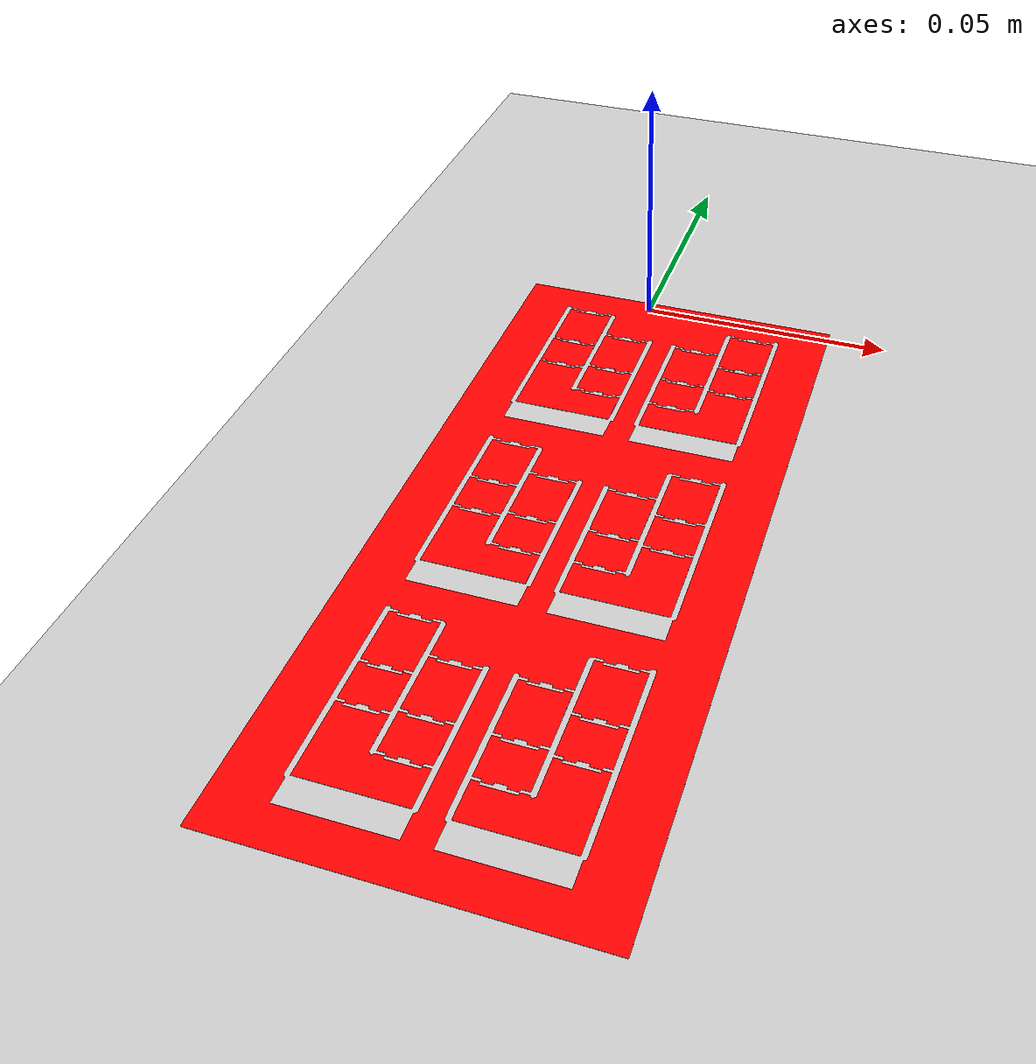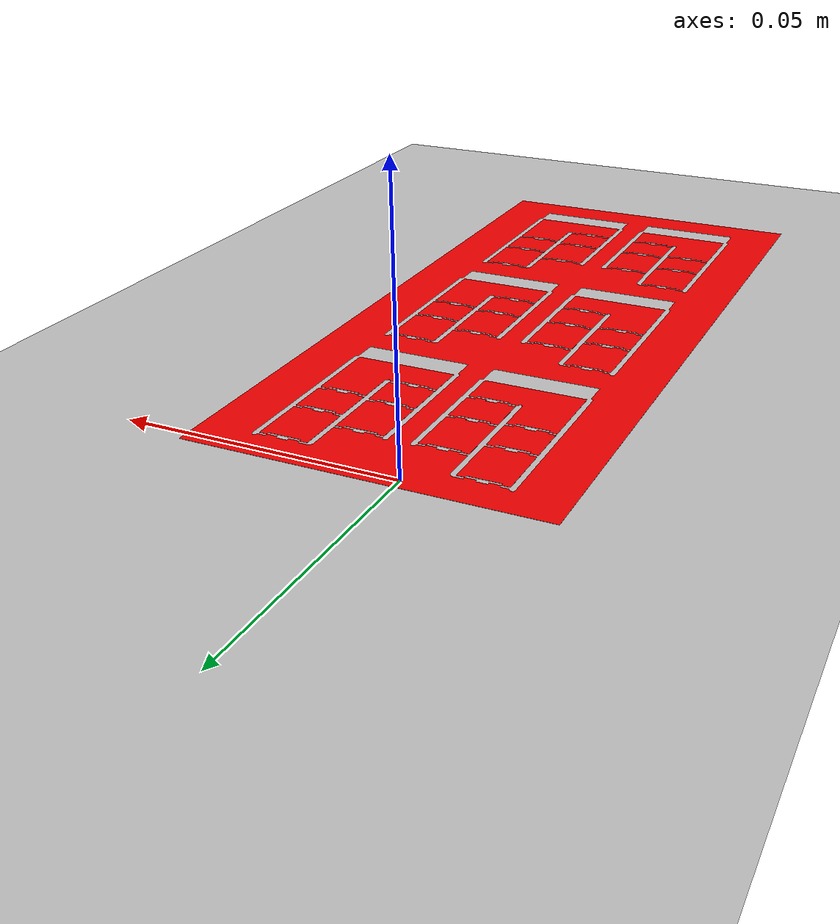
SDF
<sdf version="1.5">
  <world name="world">
    <model name="default_body">
      <static>false</static>
      <pose>0 0 0 0 0 0</pose>
      <plugin filename="libmodel_vel.so" name="Model_Vel"/>
      <link name="*">
        <gravity>true</gravity>
        <self_collide>False</self_collide>
        <visual name="basic_bot_visual0">
          <pose>0 0 0 0 0 0</pose>
          <geometry>
            <mesh>
              <uri>file:///home/skylion/popupCAD_files/export/140065903661264.dae</uri>
            </mesh>
          </geometry>
        </visual>
        <collision name="collision:140065903661264">
          <pose>0.00597611751 -0.0676266271431 6.25161244788e-05 0 0 0</pose>
          <geometry>
            <box>
              <size>0.0650002 0.1420002 0.0001</size>
            </box>
          </geometry>
          <surface>
            <bounce>
              <restitution_coefficient>0</restitution_coefficient>
            </bounce>
          </surface>
        </collision>
        <inertial>
          <mass>6.0595835349e-07</mass>
          <pose>0.00597611751 -0.0676266271431 6.25161244788e-05 0 0 0</pose>
          <inertia>
            <ixx>1.13880484572e-09</ixx>
            <ixy>2.91163048876e-25</ixy>
            <ixz>1.32008241998e-28</ixz>
            <iyy>2.93558777108e-10</iyy>
            <iyz>-1.37965658533e-16</iyz>
            <izz>1.43236204607e-09</izz>
          </inertia>
        </inertial>
      </link>
      <link name="*D0A0A0">
        <gravity>true</gravity>
        <self_collide>False</self_collide>
        <visual name="basic_bot_visual1">
          <pose>0 0 0 0 0 0</pose>
          <geometry>
            <mesh>
              <uri>file:///home/skylion/popupCAD_files/export/140065900404880.dae</uri>
            </mesh>
          </geometry>
        </visual>
        <collision name="collision:140065900404880">
          <pose>-0.00817524884737 -0.122103766714 6.24317069162e-05 0 0 0</pose>
          <geometry>
            <box>
              <size>0.019 0.013995 0.0001</size>
            </box>
          </geometry>
          <surface>
            <bounce>
              <restitution_coefficient>0</restitution_coefficient>
            </bounce>
          </surface>
        </collision>
        <inertial>
          <mass>2.38451735347e-08</mass>
          <pose>-0.00817524884737 -0.122103766714 6.24317069162e-05 0 0 0</pose>
          <inertia>
            <ixx>3.41459172524e-13</ixx>
            <ixy>1.8088601127e-13</ixy>
            <ixz>2.60989959731e-18</ixz>
            <iyy>6.6652719573e-13</iyy>
            <iyz>8.36861133808e-18</iyz>
            <izz>1.0079244814e-12</izz>
          </inertia>
        </inertial>
      </link>
      <link name="*E0A0A0">
        <gravity>true</gravity>
        <self_collide>False</self_collide>
        <visual name="basic_bot_visual2">
          <pose>0 0 0 0 0 0</pose>
          <geometry>
            <mesh>
              <uri>file:///home/skylion/popupCAD_files/export/140065900330512.dae</uri>
            </mesh>
          </geometry>
        </visual>
        <collision name="collision:140065900330512">
          <pose>-0.00817524884737 -0.0771037667138 6.24317069162e-05 0 0 0</pose>
          <geometry>
            <box>
              <size>0.019 0.013995 0.0001</size>
            </box>
          </geometry>
          <surface>
            <bounce>
              <restitution_coefficient>0</restitution_coefficient>
            </bounce>
          </surface>
        </collision>
        <inertial>
          <mass>2.38451735347e-08</mass>
          <pose>-0.00817524884737 -0.0771037667138 6.24317069162e-05 0 0 0</pose>
          <inertia>
            <ixx>3.41459172524e-13</ixx>
            <ixy>1.8088601127e-13</ixy>
            <ixz>2.60989959732e-18</ixz>
            <iyy>6.6652719573e-13</iyy>
            <iyz>8.36861133811e-18</iyz>
            <izz>1.0079244814e-12</izz>
          </inertia>
        </inertial>
      </link>
      <link name="*A0A0">
        <gravity>true</gravity>
        <self_collide>False</self_collide>
        <visual name="basic_bot_visual3">
          <pose>0 0 0 0 0 0</pose>
          <geometry>
            <mesh>
              <uri>file:///home/skylion/popupCAD_files/export/140065900440528.dae</uri>
            </mesh>
          </geometry>
        </visual>
        <collision name="collision:140065900440528">
          <pose>-0.01152388249 -0.10973558386 6.25e-05 0 0 0</pose>
          <geometry>
            <box>
              <size>0.009 0.00799 0.0001</size>
            </box>
          </geometry>
          <surface>
            <bounce>
              <restitution_coefficient>0</restitution_coefficient>
            </bounce>
          </surface>
        </collision>
        <inertial>
          <mass>8.38280464243e-09</mass>
          <pose>-0.01152388249 -0.10973558386 6.25e-05 0 0 0</pose>
          <inertia>
            <ixx>3.93102818947e-14</ixx>
            <ixy>-9.36753836022e-28</ixy>
            <ixz>7.81843297986e-31</ixz>
            <iyy>5.75484237895e-14</iyy>
            <iyz>6.99384902395e-18</iyz>
            <izz>9.6837081221e-14</izz>
          </inertia>
        </inertial>
      </link>
      <link name="*A0">
        <gravity>true</gravity>
        <self_collide>False</self_collide>
        <visual name="basic_bot_visual4">
          <pose>0 0 0 0 0 0</pose>
          <geometry>
            <mesh>
              <uri>file:///home/skylion/popupCAD_files/export/140065900523472.dae</uri>
            </mesh>
          </geometry>
        </visual>
        <collision name="collision:140065900523472">
          <pose>-0.01152388249 -0.10023558386 6.25e-05 0 0 0</pose>
          <geometry>
            <box>
              <size>0.009 0.01099 0.0001</size>
            </box>
          </geometry>
          <surface>
            <bounce>
              <restitution_coefficient>0</restitution_coefficient>
            </bounce>
          </surface>
        </collision>
        <inertial>
          <mass>1.17578046424e-08</mass>
          <pose>-0.01152388249 -0.10023558386 6.25e-05 0 0 0</pose>
          <inertia>
            <ixx>1.07760706736e-13</ixx>
            <ixy>-2.77124370814e-28</ixy>
            <ixz>6.70955474026e-30</ixz>
            <iyy>8.03340683208e-14</iyy>
            <iyz>9.79512542015e-18</iyz>
            <izz>1.88064361531e-13</izz>
          </inertia>
        </inertial>
      </link>
      <link name="*B0A0">
        <gravity>true</gravity>
        <self_collide>False</self_collide>
        <visual name="basic_bot_visual5">
          <pose>0 0 0 0 0 0</pose>
          <geometry>
            <mesh>
              <uri>file:///home/skylion/popupCAD_files/export/140065901233168.dae</uri>
            </mesh>
          </geometry>
        </visual>
        <collision name="collision:140065901233168">
          <pose>-0.01152388249 -0.06473558386 6.25e-05 0 0 0</pose>
          <geometry>
            <box>
              <size>0.009 0.00799 0.0001</size>
            </box>
          </geometry>
          <surface>
            <bounce>
              <restitution_coefficient>0</restitution_coefficient>
            </bounce>
          </surface>
        </collision>
        <inertial>
          <mass>8.38280464243e-09</mass>
          <pose>-0.01152388249 -0.06473558386 6.25e-05 0 0 0</pose>
          <inertia>
            <ixx>3.93102818947e-14</ixx>
            <ixy>-5.40721009698e-28</ixy>
            <ixz>3.01265998963e-30</ixz>
            <iyy>5.75484237895e-14</iyy>
            <iyz>6.99384902394e-18</iyz>
            <izz>9.6837081221e-14</izz>
          </inertia>
        </inertial>
      </link>
      <link name="*B0">
        <gravity>true</gravity>
        <self_collide>False</self_collide>
        <visual name="basic_bot_visual6">
          <pose>0 0 0 0 0 0</pose>
          <geometry>
            <mesh>
              <uri>file:///home/skylion/popupCAD_files/export/140065901135888.dae</uri>
            </mesh>
          </geometry>
        </visual>
        <collision name="collision:140065901135888">
          <pose>-0.01152388249 -0.05523558386 6.25e-05 0 0 0</pose>
          <geometry>
            <box>
              <size>0.009 0.01099 0.0001</size>
            </box>
          </geometry>
          <surface>
            <bounce>
              <restitution_coefficient>0</restitution_coefficient>
            </bounce>
          </surface>
        </collision>
        <inertial>
          <mass>1.17578046424e-08</mass>
          <pose>-0.01152388249 -0.05523558386 6.25e-05 0 0 0</pose>
          <inertia>
            <ixx>1.07760706736e-13</ixx>
            <ixy>2.0377263258e-28</ixy>
            <ixz>7.70617533823e-30</ixz>
            <iyy>8.03340683208e-14</iyy>
            <iyz>9.79512542017e-18</iyz>
            <izz>1.88064361531e-13</izz>
          </inertia>
        </inertial>
      </link>
      <link name="*F0A0A0">
        <gravity>true</gravity>
        <self_collide>False</self_collide>
        <visual name="basic_bot_visual7">
          <pose>0 0 0 0 0 0</pose>
          <geometry>
            <mesh>
              <uri>file:///home/skylion/popupCAD_files/export/140065901108240.dae</uri>
            </mesh>
          </geometry>
        </visual>
        <collision name="collision:140065901108240">
          <pose>-0.00817524884737 -0.0321037667138 6.24317069162e-05 0 0 0</pose>
          <geometry>
            <box>
              <size>0.019 0.013995 0.0001</size>
            </box>
          </geometry>
          <surface>
            <bounce>
              <restitution_coefficient>0</restitution_coefficient>
            </bounce>
          </surface>
        </collision>
        <inertial>
          <mass>2.38451735347e-08</mass>
          <pose>-0.00817524884737 -0.0321037667138 6.24317069162e-05 0 0 0</pose>
          <inertia>
            <ixx>3.41459172524e-13</ixx>
            <ixy>1.8088601127e-13</ixy>
            <ixz>2.60989959732e-18</ixz>
            <iyy>6.6652719573e-13</iyy>
            <iyz>8.36861133811e-18</iyz>
            <izz>1.0079244814e-12</izz>
          </inertia>
        </inertial>
      </link>
      <link name="*C0A0">
        <gravity>true</gravity>
        <self_collide>False</self_collide>
        <visual name="basic_bot_visual8">
          <pose>0 0 0 0 0 0</pose>
          <geometry>
            <mesh>
              <uri>file:///home/skylion/popupCAD_files/export/140065903015760.dae</uri>
            </mesh>
          </geometry>
        </visual>
        <collision name="collision:140065903015760">
          <pose>-0.01152388249 -0.01973558386 6.25e-05 0 0 0</pose>
          <geometry>
            <box>
              <size>0.009 0.00799 0.0001</size>
            </box>
          </geometry>
          <surface>
            <bounce>
              <restitution_coefficient>0</restitution_coefficient>
            </bounce>
          </surface>
        </collision>
        <inertial>
          <mass>8.38280464243e-09</mass>
          <pose>-0.01152388249 -0.01973558386 6.25e-05 0 0 0</pose>
          <inertia>
            <ixx>3.93102818947e-14</ixx>
            <ixy>8.12280213345e-29</ixy>
            <ixz>-2.16185636257e-31</ixz>
            <iyy>5.75484237895e-14</iyy>
            <iyz>6.99384902394e-18</iyz>
            <izz>9.6837081221e-14</izz>
          </inertia>
        </inertial>
      </link>
      <link name="*C0">
        <gravity>true</gravity>
        <self_collide>False</self_collide>
        <visual name="basic_bot_visual9">
          <pose>0 0 0 0 0 0</pose>
          <geometry>
            <mesh>
              <uri>file:///home/skylion/popupCAD_files/export/140065903074128.dae</uri>
            </mesh>
          </geometry>
        </visual>
        <collision name="collision:140065903074128">
          <pose>-0.01152388249 -0.01023558386 6.25e-05 0 0 0</pose>
          <geometry>
            <box>
              <size>0.009 0.01099 0.0001</size>
            </box>
          </geometry>
          <surface>
            <bounce>
              <restitution_coefficient>0</restitution_coefficient>
            </bounce>
          </surface>
        </collision>
        <inertial>
          <mass>1.17578046424e-08</mass>
          <pose>-0.01152388249 -0.01023558386 6.25e-05 0 0 0</pose>
          <inertia>
            <ixx>1.07760706736e-13</ixx>
            <ixy>1.52003635675e-28</ixy>
            <ixz>-5.86277149196e-31</ixz>
            <iyy>8.03340683208e-14</iyy>
            <iyz>9.79512542017e-18</iyz>
            <izz>1.88064361531e-13</izz>
          </inertia>
        </inertial>
      </link>
      <link name="*D0A0">
        <gravity>true</gravity>
        <self_collide>False</self_collide>
        <visual name="basic_bot_visual10">
          <pose>0 0 0 0 0 0</pose>
          <geometry>
            <mesh>
              <uri>file:///home/skylion/popupCAD_files/export/140065902411600.dae</uri>
            </mesh>
          </geometry>
        </visual>
        <collision name="collision:140065902411600">
          <pose>-0.00152388249 -0.11673558386 6.25e-05 0 0 0</pose>
          <geometry>
            <box>
              <size>0.009 0.00799 0.0001</size>
            </box>
          </geometry>
          <surface>
            <bounce>
              <restitution_coefficient>0</restitution_coefficient>
            </bounce>
          </surface>
        </collision>
        <inertial>
          <mass>8.38280464243e-09</mass>
          <pose>-0.00152388249 -0.11673558386 6.25e-05 0 0 0</pose>
          <inertia>
            <ixx>3.93102818947e-14</ixx>
            <ixy>2.43228003793e-28</ixy>
            <ixz>-1.21162660214e-30</ixz>
            <iyy>5.75484237895e-14</iyy>
            <iyz>6.99384902394e-18</iyz>
            <izz>9.6837081221e-14</izz>
          </inertia>
        </inertial>
      </link>
      <link name="*D0">
        <gravity>true</gravity>
        <self_collide>False</self_collide>
        <visual name="basic_bot_visual11">
          <pose>0 0 0 0 0 0</pose>
          <geometry>
            <mesh>
              <uri>file:///home/skylion/popupCAD_files/export/140065902580624.dae</uri>
            </mesh>
          </geometry>
        </visual>
        <collision name="collision:140065902580624">
          <pose>-0.00152388249 -0.10723558386 6.25e-05 0 0 0</pose>
          <geometry>
            <box>
              <size>0.009 0.01099 0.0001</size>
            </box>
          </geometry>
          <surface>
            <bounce>
              <restitution_coefficient>0</restitution_coefficient>
            </bounce>
          </surface>
        </collision>
        <inertial>
          <mass>1.17578046424e-08</mass>
          <pose>-0.00152388249 -0.10723558386 6.25e-05 0 0 0</pose>
          <inertia>
            <ixx>1.07760706736e-13</ixx>
            <ixy>-1.63244903574e-28</ixy>
            <ixz>-3.21258355492e-30</ixz>
            <iyy>8.03340683208e-14</iyy>
            <iyz>9.79512542017e-18</iyz>
            <izz>1.88064361531e-13</izz>
          </inertia>
        </inertial>
      </link>
      <link name="*E0A0">
        <gravity>true</gravity>
        <self_collide>False</self_collide>
        <visual name="basic_bot_visual12">
          <pose>0 0 0 0 0 0</pose>
          <geometry>
            <mesh>
              <uri>file:///home/skylion/popupCAD_files/export/140065902499728.dae</uri>
            </mesh>
          </geometry>
        </visual>
        <collision name="collision:140065902499728">
          <pose>-0.00152388249 -0.07173558386 6.25e-05 0 0 0</pose>
          <geometry>
            <box>
              <size>0.009 0.00799 0.0001</size>
            </box>
          </geometry>
          <surface>
            <bounce>
              <restitution_coefficient>0</restitution_coefficient>
            </bounce>
          </surface>
        </collision>
        <inertial>
          <mass>8.38280464243e-09</mass>
          <pose>-0.00152388249 -0.07173558386 6.25e-05 0 0 0</pose>
          <inertia>
            <ixx>3.93102818947e-14</ixx>
            <ixy>-1.37187841799e-29</ixy>
            <ixz>-5.64947475062e-31</ixz>
            <iyy>5.75484237895e-14</iyy>
            <iyz>6.99384902394e-18</iyz>
            <izz>9.6837081221e-14</izz>
          </inertia>
        </inertial>
      </link>
      <link name="*E0">
        <gravity>true</gravity>
        <self_collide>False</self_collide>
        <visual name="basic_bot_visual13">
          <pose>0 0 0 0 0 0</pose>
          <geometry>
            <mesh>
              <uri>file:///home/skylion/popupCAD_files/export/140065904761744.dae</uri>
            </mesh>
          </geometry>
        </visual>
        <collision name="collision:140065904761744">
          <pose>-0.00152388249 -0.06223558386 6.25e-05 0 0 0</pose>
          <geometry>
            <box>
              <size>0.009 0.01099 0.0001</size>
            </box>
          </geometry>
          <surface>
            <bounce>
              <restitution_coefficient>0</restitution_coefficient>
            </bounce>
          </surface>
        </collision>
        <inertial>
          <mass>1.17578046424e-08</mass>
          <pose>-0.00152388249 -0.06223558386 6.25e-05 0 0 0</pose>
          <inertia>
            <ixx>1.07760706736e-13</ixx>
            <ixy>-1.04400810425e-29</ixy>
            <ixz>1.26918783335e-31</ixz>
            <iyy>8.03340683208e-14</iyy>
            <iyz>9.79512542017e-18</iyz>
            <izz>1.88064361531e-13</izz>
          </inertia>
        </inertial>
      </link>
      <link name="*F0A0">
        <gravity>true</gravity>
        <self_collide>False</self_collide>
        <visual name="basic_bot_visual14">
          <pose>0 0 0 0 0 0</pose>
          <geometry>
            <mesh>
              <uri>file:///home/skylion/popupCAD_files/export/140065904914320.dae</uri>
            </mesh>
          </geometry>
        </visual>
        <collision name="collision:140065904914320">
          <pose>-0.00152388249 -0.02673558386 6.25e-05 0 0 0</pose>
          <geometry>
            <box>
              <size>0.009 0.00799 0.0001</size>
            </box>
          </geometry>
          <surface>
            <bounce>
              <restitution_coefficient>0</restitution_coefficient>
            </bounce>
          </surface>
        </collision>
        <inertial>
          <mass>8.38280464243e-09</mass>
          <pose>-0.00152388249 -0.02673558386 6.25e-05 0 0 0</pose>
          <inertia>
            <ixx>3.93102818947e-14</ixx>
            <ixy>3.06669676905e-29</ixy>
            <ixz>2.34457896605e-31</ixz>
            <iyy>5.75484237895e-14</iyy>
            <iyz>6.99384902394e-18</iyz>
            <izz>9.6837081221e-14</izz>
          </inertia>
        </inertial>
      </link>
      <link name="*F0">
        <gravity>true</gravity>
        <self_collide>False</self_collide>
        <visual name="basic_bot_visual15">
          <pose>0 0 0 0 0 0</pose>
          <geometry>
            <mesh>
              <uri>file:///home/skylion/popupCAD_files/export/140065904960464.dae</uri>
            </mesh>
          </geometry>
        </visual>
        <collision name="collision:140065904960464">
          <pose>-0.00152388249 -0.01723558386 6.25e-05 0 0 0</pose>
          <geometry>
            <box>
              <size>0.009 0.01099 0.0001</size>
            </box>
          </geometry>
          <surface>
            <bounce>
              <restitution_coefficient>0</restitution_coefficient>
            </bounce>
          </surface>
        </collision>
        <inertial>
          <mass>1.17578046424e-08</mass>
          <pose>-0.00152388249 -0.01723558386 6.25e-05 0 0 0</pose>
          <inertia>
            <ixx>1.07760706736e-13</ixx>
            <ixy>2.09294658916e-29</ixy>
            <ixz>5.55594677769e-31</ixz>
            <iyy>8.03340683208e-14</iyy>
            <iyz>9.79512542017e-18</iyz>
            <izz>1.88064361531e-13</izz>
          </inertia>
        </inertial>
      </link>
      <link name="*J0A0A0">
        <gravity>true</gravity>
        <self_collide>False</self_collide>
        <visual name="basic_bot_visual16">
          <pose>0 0 0 0 0 0</pose>
          <geometry>
            <mesh>
              <uri>file:///home/skylion/popupCAD_files/export/140065903507408.dae</uri>
            </mesh>
          </geometry>
        </visual>
        <collision name="collision:140065903507408">
          <pose>0.0201274838674 -0.122103766714 6.24317069162e-05 0 0 0</pose>
          <geometry>
            <box>
              <size>0.019 0.013995 0.0001</size>
            </box>
          </geometry>
          <surface>
            <bounce>
              <restitution_coefficient>0</restitution_coefficient>
            </bounce>
          </surface>
        </collision>
        <inertial>
          <mass>2.38451735347e-08</mass>
          <pose>0.0201274838674 -0.122103766714 6.24317069162e-05 0 0 0</pose>
          <inertia>
            <ixx>3.41459172524e-13</ixx>
            <ixy>-1.8088601127e-13</ixy>
            <ixz>-2.60989959732e-18</ixz>
            <iyy>6.6652719573e-13</iyy>
            <iyz>8.3686113381e-18</iyz>
            <izz>1.0079244814e-12</izz>
          </inertia>
        </inertial>
      </link>
      <link name="*G0A0">
        <gravity>true</gravity>
        <self_collide>False</self_collide>
        <visual name="basic_bot_visual17">
          <pose>0 0 0 0 0 0</pose>
          <geometry>
            <mesh>
              <uri>file:///home/skylion/popupCAD_files/export/140065903637584.dae</uri>
            </mesh>
          </geometry>
        </visual>
        <collision name="collision:140065903637584">
          <pose>0.01347611751 -0.11673558386 6.25e-05 0 0 0</pose>
          <geometry>
            <box>
              <size>0.009 0.00799 0.0001</size>
            </box>
          </geometry>
          <surface>
            <bounce>
              <restitution_coefficient>0</restitution_coefficient>
            </bounce>
          </surface>
        </collision>
        <inertial>
          <mass>8.38280464243e-09</mass>
          <pose>0.01347611751 -0.11673558386 6.25e-05 0 0 0</pose>
          <inertia>
            <ixx>3.93102818947e-14</ixx>
            <ixy>-2.07040858658e-27</ixy>
            <ixz>9.11144215921e-30</ixz>
            <iyy>5.75484237895e-14</iyy>
            <iyz>6.99384902396e-18</iyz>
            <izz>9.6837081221e-14</izz>
          </inertia>
        </inertial>
      </link>
      <link name="*G0">
        <gravity>true</gravity>
        <self_collide>False</self_collide>
        <visual name="basic_bot_visual18">
          <pose>0 0 0 0 0 0</pose>
          <geometry>
            <mesh>
              <uri>file:///home/skylion/popupCAD_files/export/140065619482704.dae</uri>
            </mesh>
          </geometry>
        </visual>
        <collision name="collision:140065619482704">
          <pose>0.01347611751 -0.10723558386 6.25e-05 0 0 0</pose>
          <geometry>
            <box>
              <size>0.009 0.01099 0.0001</size>
            </box>
          </geometry>
          <surface>
            <bounce>
              <restitution_coefficient>0</restitution_coefficient>
            </bounce>
          </surface>
        </collision>
        <inertial>
          <mass>1.17578046424e-08</mass>
          <pose>0.01347611751 -0.10723558386 6.25e-05 0 0 0</pose>
          <inertia>
            <ixx>1.07760706736e-13</ixx>
            <ixy>6.50391164451e-28</ixy>
            <ixz>-2.40388557127e-30</ixz>
            <iyy>8.03340683208e-14</iyy>
            <iyz>9.79512542016e-18</iyz>
            <izz>1.88064361531e-13</izz>
          </inertia>
        </inertial>
      </link>
      <link name="*K0A0A0">
        <gravity>true</gravity>
        <self_collide>False</self_collide>
        <visual name="basic_bot_visual19">
          <pose>0 0 0 0 0 0</pose>
          <geometry>
            <mesh>
              <uri>file:///home/skylion/popupCAD_files/export/140065619496016.dae</uri>
            </mesh>
          </geometry>
        </visual>
        <collision name="collision:140065619496016">
          <pose>0.0201274838674 -0.0771037667138 6.24317069162e-05 0 0 0</pose>
          <geometry>
            <box>
              <size>0.019 0.013995 0.0001</size>
            </box>
          </geometry>
          <surface>
            <bounce>
              <restitution_coefficient>0</restitution_coefficient>
            </bounce>
          </surface>
        </collision>
        <inertial>
          <mass>2.38451735347e-08</mass>
          <pose>0.0201274838674 -0.0771037667138 6.24317069162e-05 0 0 0</pose>
          <inertia>
            <ixx>3.41459172524e-13</ixx>
            <ixy>-1.8088601127e-13</ixy>
            <ixz>-2.6098995973e-18</ixz>
            <iyy>6.6652719573e-13</iyy>
            <iyz>8.36861133812e-18</iyz>
            <izz>1.0079244814e-12</izz>
          </inertia>
        </inertial>
      </link>
      <link name="*H0A0">
        <gravity>true</gravity>
        <self_collide>False</self_collide>
        <visual name="basic_bot_visual20">
          <pose>0 0 0 0 0 0</pose>
          <geometry>
            <mesh>
              <uri>file:///home/skylion/popupCAD_files/export/140065619470544.dae</uri>
            </mesh>
          </geometry>
        </visual>
        <collision name="collision:140065619470544">
          <pose>0.01347611751 -0.07173558386 6.25e-05 0 0 0</pose>
          <geometry>
            <box>
              <size>0.009 0.00799 0.0001</size>
            </box>
          </geometry>
          <surface>
            <bounce>
              <restitution_coefficient>0</restitution_coefficient>
            </bounce>
          </surface>
        </collision>
        <inertial>
          <mass>8.38280464243e-09</mass>
          <pose>0.01347611751 -0.07173558386 6.25e-05 0 0 0</pose>
          <inertia>
            <ixx>3.93102818947e-14</ixx>
            <ixy>-5.9876391599e-28</ixy>
            <ixz>-3.34100697103e-31</ixz>
            <iyy>5.75484237895e-14</iyy>
            <iyz>6.99384902393e-18</iyz>
            <izz>9.6837081221e-14</izz>
          </inertia>
        </inertial>
      </link>
      <link name="*H0">
        <gravity>true</gravity>
        <self_collide>False</self_collide>
        <visual name="basic_bot_visual21">
          <pose>0 0 0 0 0 0</pose>
          <geometry>
            <mesh>
              <uri>file:///home/skylion/popupCAD_files/export/140065902800080.dae</uri>
            </mesh>
          </geometry>
        </visual>
        <collision name="collision:140065902800080">
          <pose>0.01347611751 -0.06223558386 6.25e-05 0 0 0</pose>
          <geometry>
            <box>
              <size>0.009 0.01099 0.0001</size>
            </box>
          </geometry>
          <surface>
            <bounce>
              <restitution_coefficient>0</restitution_coefficient>
            </bounce>
          </surface>
        </collision>
        <inertial>
          <mass>1.17578046424e-08</mass>
          <pose>0.01347611751 -0.06223558386 6.25e-05 0 0 0</pose>
          <inertia>
            <ixx>1.07760706736e-13</ixx>
            <ixy>-9.71346619312e-28</ixy>
            <ixz>-4.19436245526e-30</ixz>
            <iyy>8.03340683208e-14</iyy>
            <iyz>9.79512542018e-18</iyz>
            <izz>1.88064361531e-13</izz>
          </inertia>
        </inertial>
      </link>
      <link name="*L0A0A0">
        <gravity>true</gravity>
        <self_collide>False</self_collide>
        <visual name="basic_bot_visual22">
          <pose>0 0 0 0 0 0</pose>
          <geometry>
            <mesh>
              <uri>file:///home/skylion/popupCAD_files/export/140065902702864.dae</uri>
            </mesh>
          </geometry>
        </visual>
        <collision name="collision:140065902702864">
          <pose>0.0201274838674 -0.0321037667138 6.24317069162e-05 0 0 0</pose>
          <geometry>
            <box>
              <size>0.019 0.013995 0.0001</size>
            </box>
          </geometry>
          <surface>
            <bounce>
              <restitution_coefficient>0</restitution_coefficient>
            </bounce>
          </surface>
        </collision>
        <inertial>
          <mass>2.38451735347e-08</mass>
          <pose>0.0201274838674 -0.0321037667138 6.24317069162e-05 0 0 0</pose>
          <inertia>
            <ixx>3.41459172524e-13</ixx>
            <ixy>-1.8088601127e-13</ixy>
            <ixz>-2.60989959733e-18</ixz>
            <iyy>6.6652719573e-13</iyy>
            <iyz>8.36861133808e-18</iyz>
            <izz>1.0079244814e-12</izz>
          </inertia>
        </inertial>
      </link>
      <link name="*I0A0">
        <gravity>true</gravity>
        <self_collide>False</self_collide>
        <visual name="basic_bot_visual23">
          <pose>0 0 0 0 0 0</pose>
          <geometry>
            <mesh>
              <uri>file:///home/skylion/popupCAD_files/export/140065902808080.dae</uri>
            </mesh>
          </geometry>
        </visual>
        <collision name="collision:140065902808080">
          <pose>0.01347611751 -0.02673558386 6.25e-05 0 0 0</pose>
          <geometry>
            <box>
              <size>0.009 0.00799 0.0001</size>
            </box>
          </geometry>
          <surface>
            <bounce>
              <restitution_coefficient>0</restitution_coefficient>
            </bounce>
          </surface>
        </collision>
        <inertial>
          <mass>8.38280464243e-09</mass>
          <pose>0.01347611751 -0.02673558386 6.25e-05 0 0 0</pose>
          <inertia>
            <ixx>3.93102818947e-14</ixx>
            <ixy>2.44676303111e-28</ixy>
            <ixz>7.73959022276e-31</ixz>
            <iyy>5.75484237895e-14</iyy>
            <iyz>6.99384902395e-18</iyz>
            <izz>9.6837081221e-14</izz>
          </inertia>
        </inertial>
      </link>
      <link name="*I0">
        <gravity>true</gravity>
        <self_collide>False</self_collide>
        <visual name="basic_bot_visual24">
          <pose>0 0 0 0 0 0</pose>
          <geometry>
            <mesh>
              <uri>file:///home/skylion/popupCAD_files/export/140065900838992.dae</uri>
            </mesh>
          </geometry>
        </visual>
        <collision name="collision:140065900838992">
          <pose>0.01347611751 -0.01723558386 6.25e-05 0 0 0</pose>
          <geometry>
            <box>
              <size>0.009 0.01099 0.0001</size>
            </box>
          </geometry>
          <surface>
            <bounce>
              <restitution_coefficient>0</restitution_coefficient>
            </bounce>
          </surface>
        </collision>
        <inertial>
          <mass>1.17578046424e-08</mass>
          <pose>0.01347611751 -0.01723558386 6.25e-05 0 0 0</pose>
          <inertia>
            <ixx>1.07760706736e-13</ixx>
            <ixy>1.27265450725e-28</ixy>
            <ixz>2.62432029047e-31</ixz>
            <iyy>8.03340683208e-14</iyy>
            <iyz>9.79512542016e-18</iyz>
            <izz>1.88064361531e-13</izz>
          </inertia>
        </inertial>
      </link>
      <link name="*J0A0">
        <gravity>true</gravity>
        <self_collide>False</self_collide>
        <visual name="basic_bot_visual25">
          <pose>0 0 0 0 0 0</pose>
          <geometry>
            <mesh>
              <uri>file:///home/skylion/popupCAD_files/export/140065900991568.dae</uri>
            </mesh>
          </geometry>
        </visual>
        <collision name="collision:140065900991568">
          <pose>0.02347611751 -0.10973558386 6.25e-05 0 0 0</pose>
          <geometry>
            <box>
              <size>0.009 0.00799 0.0001</size>
            </box>
          </geometry>
          <surface>
            <bounce>
              <restitution_coefficient>0</restitution_coefficient>
            </bounce>
          </surface>
        </collision>
        <inertial>
          <mass>8.38280464243e-09</mass>
          <pose>0.02347611751 -0.10973558386 6.25e-05 0 0 0</pose>
          <inertia>
            <ixx>3.93102818947e-14</ixx>
            <ixy>7.62791517494e-28</ixy>
            <ixz>4.39373231569e-30</ixz>
            <iyy>5.75484237895e-14</iyy>
            <iyz>6.99384902393e-18</iyz>
            <izz>9.6837081221e-14</izz>
          </inertia>
        </inertial>
      </link>
      <link name="*J0">
        <gravity>true</gravity>
        <self_collide>False</self_collide>
        <visual name="basic_bot_visual26">
          <pose>0 0 0 0 0 0</pose>
          <geometry>
            <mesh>
              <uri>file:///home/skylion/popupCAD_files/export/140065900742736.dae</uri>
            </mesh>
          </geometry>
        </visual>
        <collision name="collision:140065900742736">
          <pose>0.02347611751 -0.10023558386 6.25e-05 0 0 0</pose>
          <geometry>
            <box>
              <size>0.009 0.01099 0.0001</size>
            </box>
          </geometry>
          <surface>
            <bounce>
              <restitution_coefficient>0</restitution_coefficient>
            </bounce>
          </surface>
        </collision>
        <inertial>
          <mass>1.17578046424e-08</mass>
          <pose>0.02347611751 -0.10023558386 6.25e-05 0 0 0</pose>
          <inertia>
            <ixx>1.07760706736e-13</ixx>
            <ixy>-2.58308805629e-27</ixy>
            <ixz>2.94799689175e-30</ixz>
            <iyy>8.03340683208e-14</iyy>
            <iyz>9.7951254202e-18</iyz>
            <izz>1.88064361531e-13</izz>
          </inertia>
        </inertial>
      </link>
      <link name="*K0A0">
        <gravity>true</gravity>
        <self_collide>False</self_collide>
        <visual name="basic_bot_visual27">
          <pose>0 0 0 0 0 0</pose>
          <geometry>
            <mesh>
              <uri>file:///home/skylion/popupCAD_files/export/140065900616784.dae</uri>
            </mesh>
          </geometry>
        </visual>
        <collision name="collision:140065900616784">
          <pose>0.02347611751 -0.06473558386 6.25e-05 0 0 0</pose>
          <geometry>
            <box>
              <size>0.009 0.00799 0.0001</size>
            </box>
          </geometry>
          <surface>
            <bounce>
              <restitution_coefficient>0</restitution_coefficient>
            </bounce>
          </surface>
        </collision>
        <inertial>
          <mass>8.38280464243e-09</mass>
          <pose>0.02347611751 -0.06473558386 6.25e-05 0 0 0</pose>
          <inertia>
            <ixx>3.93102818947e-14</ixx>
            <ixy>8.29844694438e-29</ixy>
            <ixz>8.66496344985e-30</ixz>
            <iyy>5.75484237895e-14</iyy>
            <iyz>6.99384902395e-18</iyz>
            <izz>9.6837081221e-14</izz>
          </inertia>
        </inertial>
      </link>
      <link name="*K0">
        <gravity>true</gravity>
        <self_collide>False</self_collide>
        <visual name="basic_bot_visual28">
          <pose>0 0 0 0 0 0</pose>
          <geometry>
            <mesh>
              <uri>file:///home/skylion/popupCAD_files/export/140065906300752.dae</uri>
            </mesh>
          </geometry>
        </visual>
        <collision name="collision:140065906300752">
          <pose>0.02347611751 -0.05523558386 6.25e-05 0 0 0</pose>
          <geometry>
            <box>
              <size>0.009 0.01099 0.0001</size>
            </box>
          </geometry>
          <surface>
            <bounce>
              <restitution_coefficient>0</restitution_coefficient>
            </bounce>
          </surface>
        </collision>
        <inertial>
          <mass>1.17578046424e-08</mass>
          <pose>0.02347611751 -0.05523558386 6.25e-05 0 0 0</pose>
          <inertia>
            <ixx>1.07760706736e-13</ixx>
            <ixy>-1.53032852637e-28</ixy>
            <ixz>-3.21525578272e-30</ixz>
            <iyy>8.03340683208e-14</iyy>
            <iyz>9.79512542016e-18</iyz>
            <izz>1.88064361531e-13</izz>
          </inertia>
        </inertial>
      </link>
      <link name="*L0A0">
        <gravity>true</gravity>
        <self_collide>False</self_collide>
        <visual name="basic_bot_visual29">
          <pose>0 0 0 0 0 0</pose>
          <geometry>
            <mesh>
              <uri>file:///home/skylion/popupCAD_files/export/140065900698448.dae</uri>
            </mesh>
          </geometry>
        </visual>
        <collision name="collision:140065900698448">
          <pose>0.02347611751 -0.01973558386 6.25e-05 0 0 0</pose>
          <geometry>
            <box>
              <size>0.009 0.00799 0.0001</size>
            </box>
          </geometry>
          <surface>
            <bounce>
              <restitution_coefficient>0</restitution_coefficient>
            </bounce>
          </surface>
        </collision>
        <inertial>
          <mass>8.38280464243e-09</mass>
          <pose>0.02347611751 -0.01973558386 6.25e-05 0 0 0</pose>
          <inertia>
            <ixx>3.93102818947e-14</ixx>
            <ixy>5.30139180212e-29</ixy>
            <ixz>5.26690080423e-30</ixz>
            <iyy>5.75484237895e-14</iyy>
            <iyz>6.99384902393e-18</iyz>
            <izz>9.6837081221e-14</izz>
          </inertia>
        </inertial>
      </link>
      <link name="*L0">
        <gravity>true</gravity>
        <self_collide>False</self_collide>
        <visual name="basic_bot_visual30">
          <pose>0 0 0 0 0 0</pose>
          <geometry>
            <mesh>
              <uri>file:///home/skylion/popupCAD_files/export/140065900752720.dae</uri>
            </mesh>
          </geometry>
        </visual>
        <collision name="collision:140065900752720">
          <pose>0.02347611751 -0.01023558386 6.25e-05 0 0 0</pose>
          <geometry>
            <box>
              <size>0.009 0.01099 0.0001</size>
            </box>
          </geometry>
          <surface>
            <bounce>
              <restitution_coefficient>0</restitution_coefficient>
            </bounce>
          </surface>
        </collision>
        <inertial>
          <mass>1.17578046424e-08</mass>
          <pose>0.02347611751 -0.01023558386 6.25e-05 0 0 0</pose>
          <inertia>
            <ixx>1.07760706736e-13</ixx>
            <ixy>-5.65021623365e-29</ixy>
            <ixz>1.46513916813e-30</ixz>
            <iyy>8.03340683208e-14</iyy>
            <iyz>9.79512542017e-18</iyz>
            <izz>1.88064361531e-13</izz>
          </inertia>
        </inertial>
      </link>
      <joint name="hingejoint*A0A0|*D0A0A0" type="revolute">
        <parent>*A0A0</parent>
        <child>*D0A0A0</child>
        <pose>-0.01152388249 -0.11373558386 5e-05 0 0 0</pose>
        <axis>
          <xyz>-1.0 0.0 0</xyz>
          <limit>
            <lower>-3.14159265359</lower>
            <upper>3.14159265359</upper>
          </limit>
          <dynamics>
            <damping>2.5e-08</damping>
            <spring_reference>1.57079632679</spring_reference>
            <spring_stiffness>5e-08</spring_stiffness>
          </dynamics>
        </axis>
      </joint>
      <joint name="hingejoint*A0|*A0A0" type="revolute">
        <parent>*A0</parent>
        <child>*A0A0</child>
        <pose>-0.01152388249 -0.10573558386 5e-05 0 0 0</pose>
        <axis>
          <xyz>-1.0 0.0 0</xyz>
          <limit>
            <lower>-3.14159265359</lower>
            <upper>0.0</upper>
          </limit>
          <dynamics>
            <damping>2.5e-10</damping>
            <spring_reference>0.0</spring_reference>
            <spring_stiffness>5e-10</spring_stiffness>
          </dynamics>
        </axis>
      </joint>
      <joint name="hingejoint*|*A0" type="revolute">
        <parent>*</parent>
        <child>*A0</child>
        <pose>-0.01152388249 -0.09473558386 5e-05 0 0 0</pose>
        <axis>
          <xyz>-1.0 0.0 0</xyz>
          <limit>
            <lower>-3.14159265359</lower>
            <upper>3.14159265359</upper>
          </limit>
          <dynamics>
            <damping>2.5e-08</damping>
            <spring_reference>-1.57079632679</spring_reference>
            <spring_stiffness>5e-08</spring_stiffness>
          </dynamics>
        </axis>
      </joint>
      <joint name="hingejoint*B0A0|*E0A0A0" type="revolute">
        <parent>*B0A0</parent>
        <child>*E0A0A0</child>
        <pose>-0.01152388249 -0.06873558386 5e-05 0 0 0</pose>
        <axis>
          <xyz>-1.0 0.0 0</xyz>
          <limit>
            <lower>-3.14159265359</lower>
            <upper>3.14159265359</upper>
          </limit>
          <dynamics>
            <damping>2.5e-08</damping>
            <spring_reference>1.57079632679</spring_reference>
            <spring_stiffness>5e-08</spring_stiffness>
          </dynamics>
        </axis>
      </joint>
      <joint name="hingejoint*B0|*B0A0" type="revolute">
        <parent>*B0</parent>
        <child>*B0A0</child>
        <pose>-0.01152388249 -0.06073558386 5e-05 0 0 0</pose>
        <axis>
          <xyz>-1.0 0.0 0</xyz>
          <limit>
            <lower>-3.14159265359</lower>
            <upper>0.0</upper>
          </limit>
          <dynamics>
            <damping>2.5e-10</damping>
            <spring_reference>0.0</spring_reference>
            <spring_stiffness>5e-10</spring_stiffness>
          </dynamics>
        </axis>
      </joint>
      <joint name="hingejoint*|*B0" type="revolute">
        <parent>*</parent>
        <child>*B0</child>
        <pose>-0.01152388249 -0.04973558386 5e-05 0 0 0</pose>
        <axis>
          <xyz>-1.0 0.0 0</xyz>
          <limit>
            <lower>-3.14159265359</lower>
            <upper>3.14159265359</upper>
          </limit>
          <dynamics>
            <damping>2.5e-08</damping>
            <spring_reference>-1.57079632679</spring_reference>
            <spring_stiffness>5e-08</spring_stiffness>
          </dynamics>
        </axis>
      </joint>
      <joint name="hingejoint*C0A0|*F0A0A0" type="revolute">
        <parent>*C0A0</parent>
        <child>*F0A0A0</child>
        <pose>-0.01152388249 -0.02373558386 5e-05 0 0 0</pose>
        <axis>
          <xyz>-1.0 0.0 0</xyz>
          <limit>
            <lower>-3.14159265359</lower>
            <upper>3.14159265359</upper>
          </limit>
          <dynamics>
            <damping>2.5e-08</damping>
            <spring_reference>1.57079632679</spring_reference>
            <spring_stiffness>5e-08</spring_stiffness>
          </dynamics>
        </axis>
      </joint>
      <joint name="hingejoint*C0|*C0A0" type="revolute">
        <parent>*C0</parent>
        <child>*C0A0</child>
        <pose>-0.01152388249 -0.01573558386 5e-05 0 0 0</pose>
        <axis>
          <xyz>-1.0 0.0 0</xyz>
          <limit>
            <lower>-3.14159265359</lower>
            <upper>0.0</upper>
          </limit>
          <dynamics>
            <damping>2.5e-10</damping>
            <spring_reference>0.0</spring_reference>
            <spring_stiffness>5e-10</spring_stiffness>
          </dynamics>
        </axis>
      </joint>
      <joint name="hingejoint*|*C0" type="revolute">
        <parent>*</parent>
        <child>*C0</child>
        <pose>-0.01152388249 -0.00473558386 5e-05 0 0 0</pose>
        <axis>
          <xyz>-1.0 0.0 0</xyz>
          <limit>
            <lower>-3.14159265359</lower>
            <upper>3.14159265359</upper>
          </limit>
          <dynamics>
            <damping>2.5e-08</damping>
            <spring_reference>-1.57079632679</spring_reference>
            <spring_stiffness>5e-08</spring_stiffness>
          </dynamics>
        </axis>
      </joint>
      <joint name="hingejoint*D0A0|*D0A0A0" type="revolute">
        <parent>*D0A0</parent>
        <child>*D0A0A0</child>
        <pose>-0.00152388249 -0.12073558386 5e-05 0 0 0</pose>
        <axis>
          <xyz>-1.0 0.0 0</xyz>
          <limit>
            <lower>-3.14159265359</lower>
            <upper>3.14159265359</upper>
          </limit>
          <dynamics>
            <damping>2.5e-08</damping>
            <spring_reference>1.57079632679</spring_reference>
            <spring_stiffness>5e-08</spring_stiffness>
          </dynamics>
        </axis>
      </joint>
      <joint name="hingejoint*D0|*D0A0" type="revolute">
        <parent>*D0</parent>
        <child>*D0A0</child>
        <pose>-0.00152388249 -0.11273558386 5e-05 0 0 0</pose>
        <axis>
          <xyz>-1.0 0.0 0</xyz>
          <limit>
            <lower>-3.14159265359</lower>
            <upper>0.0</upper>
          </limit>
          <dynamics>
            <damping>2.5e-10</damping>
            <spring_reference>0.0</spring_reference>
            <spring_stiffness>5e-10</spring_stiffness>
          </dynamics>
        </axis>
      </joint>
      <joint name="hingejoint*|*D0" type="revolute">
        <parent>*</parent>
        <child>*D0</child>
        <pose>-0.00152388249 -0.10173558386 5e-05 0 0 0</pose>
        <axis>
          <xyz>-1.0 0.0 0</xyz>
          <limit>
            <lower>-3.14159265359</lower>
            <upper>3.14159265359</upper>
          </limit>
          <dynamics>
            <damping>2.5e-08</damping>
            <spring_reference>-1.57079632679</spring_reference>
            <spring_stiffness>5e-08</spring_stiffness>
          </dynamics>
        </axis>
      </joint>
      <joint name="hingejoint*E0A0|*E0A0A0" type="revolute">
        <parent>*E0A0</parent>
        <child>*E0A0A0</child>
        <pose>-0.00152388249 -0.07573558386 5e-05 0 0 0</pose>
        <axis>
          <xyz>-1.0 0.0 0</xyz>
          <limit>
            <lower>-3.14159265359</lower>
            <upper>3.14159265359</upper>
          </limit>
          <dynamics>
            <damping>2.5e-08</damping>
            <spring_reference>1.57079632679</spring_reference>
            <spring_stiffness>5e-08</spring_stiffness>
          </dynamics>
        </axis>
      </joint>
      <joint name="hingejoint*E0|*E0A0" type="revolute">
        <parent>*E0</parent>
        <child>*E0A0</child>
        <pose>-0.00152388249 -0.06773558386 5e-05 0 0 0</pose>
        <axis>
          <xyz>-1.0 0.0 0</xyz>
          <limit>
            <lower>-3.14159265359</lower>
            <upper>0.0</upper>
          </limit>
          <dynamics>
            <damping>2.5e-10</damping>
            <spring_reference>0.0</spring_reference>
            <spring_stiffness>5e-10</spring_stiffness>
          </dynamics>
        </axis>
      </joint>
      <joint name="hingejoint*|*E0" type="revolute">
        <parent>*</parent>
        <child>*E0</child>
        <pose>-0.00152388249 -0.05673558386 5e-05 0 0 0</pose>
        <axis>
          <xyz>-1.0 0.0 0</xyz>
          <limit>
            <lower>-3.14159265359</lower>
            <upper>3.14159265359</upper>
          </limit>
          <dynamics>
            <damping>2.5e-08</damping>
            <spring_reference>-1.57079632679</spring_reference>
            <spring_stiffness>5e-08</spring_stiffness>
          </dynamics>
        </axis>
      </joint>
      <joint name="hingejoint*F0A0|*F0A0A0" type="revolute">
        <parent>*F0A0</parent>
        <child>*F0A0A0</child>
        <pose>-0.00152388249 -0.03073558386 5e-05 0 0 0</pose>
        <axis>
          <xyz>-1.0 0.0 0</xyz>
          <limit>
            <lower>-3.14159265359</lower>
            <upper>3.14159265359</upper>
          </limit>
          <dynamics>
            <damping>2.5e-08</damping>
            <spring_reference>1.57079632679</spring_reference>
            <spring_stiffness>5e-08</spring_stiffness>
          </dynamics>
        </axis>
      </joint>
      <joint name="hingejoint*F0|*F0A0" type="revolute">
        <parent>*F0</parent>
        <child>*F0A0</child>
        <pose>-0.00152388249 -0.02273558386 5e-05 0 0 0</pose>
        <axis>
          <xyz>-1.0 0.0 0</xyz>
          <limit>
            <lower>-3.14159265359</lower>
            <upper>0.0</upper>
          </limit>
          <dynamics>
            <damping>2.5e-10</damping>
            <spring_reference>0.0</spring_reference>
            <spring_stiffness>5e-10</spring_stiffness>
          </dynamics>
        </axis>
      </joint>
      <joint name="hingejoint*|*F0" type="revolute">
        <parent>*</parent>
        <child>*F0</child>
        <pose>-0.00152388249 -0.01173558386 5e-05 0 0 0</pose>
        <axis>
          <xyz>-1.0 0.0 0</xyz>
          <limit>
            <lower>-3.14159265359</lower>
            <upper>3.14159265359</upper>
          </limit>
          <dynamics>
            <damping>2.5e-08</damping>
            <spring_reference>-1.57079632679</spring_reference>
            <spring_stiffness>5e-08</spring_stiffness>
          </dynamics>
        </axis>
      </joint>
      <joint name="hingejoint*G0|*G0A0" type="revolute">
        <parent>*G0</parent>
        <child>*G0A0</child>
        <pose>0.01347611751 -0.11273558386 5e-05 0 0 0</pose>
        <axis>
          <xyz>-1.0 0.0 0</xyz>
          <limit>
            <lower>-3.14159265359</lower>
            <upper>0.0</upper>
          </limit>
          <dynamics>
            <damping>2.5e-10</damping>
            <spring_reference>0.0</spring_reference>
            <spring_stiffness>5e-10</spring_stiffness>
          </dynamics>
        </axis>
      </joint>
      <joint name="hingejoint*H0|*H0A0" type="revolute">
        <parent>*H0</parent>
        <child>*H0A0</child>
        <pose>0.01347611751 -0.06773558386 5e-05 0 0 0</pose>
        <axis>
          <xyz>-1.0 0.0 0</xyz>
          <limit>
            <lower>-3.14159265359</lower>
            <upper>0.0</upper>
          </limit>
          <dynamics>
            <damping>2.5e-10</damping>
            <spring_reference>0.0</spring_reference>
            <spring_stiffness>5e-10</spring_stiffness>
          </dynamics>
        </axis>
      </joint>
      <joint name="hingejoint*I0|*I0A0" type="revolute">
        <parent>*I0</parent>
        <child>*I0A0</child>
        <pose>0.01347611751 -0.02273558386 5e-05 0 0 0</pose>
        <axis>
          <xyz>-1.0 0.0 0</xyz>
          <limit>
            <lower>-3.14159265359</lower>
            <upper>0.0</upper>
          </limit>
          <dynamics>
            <damping>2.5e-10</damping>
            <spring_reference>0.0</spring_reference>
            <spring_stiffness>5e-10</spring_stiffness>
          </dynamics>
        </axis>
      </joint>
      <joint name="hingejoint*G0A0|*J0A0A0" type="revolute">
        <parent>*G0A0</parent>
        <child>*J0A0A0</child>
        <pose>0.01347611751 -0.12073558386 5e-05 0 0 0</pose>
        <axis>
          <xyz>1.0 0.0 0</xyz>
          <limit>
            <lower>-3.14159265359</lower>
            <upper>3.14159265359</upper>
          </limit>
          <dynamics>
            <damping>2.5e-08</damping>
            <spring_reference>-1.57079632679</spring_reference>
            <spring_stiffness>5e-08</spring_stiffness>
          </dynamics>
        </axis>
      </joint>
      <joint name="hingejoint*J0|*J0A0" type="revolute">
        <parent>*J0</parent>
        <child>*J0A0</child>
        <pose>0.02347611751 -0.10573558386 5e-05 0 0 0</pose>
        <axis>
          <xyz>-1.0 0.0 0</xyz>
          <limit>
            <lower>-3.14159265359</lower>
            <upper>0.0</upper>
          </limit>
          <dynamics>
            <damping>2.5e-10</damping>
            <spring_reference>0.0</spring_reference>
            <spring_stiffness>5e-10</spring_stiffness>
          </dynamics>
        </axis>
      </joint>
      <joint name="hingejoint*|*G0" type="revolute">
        <parent>*</parent>
        <child>*G0</child>
        <pose>0.01347611751 -0.10173558386 5e-05 0 0 0</pose>
        <axis>
          <xyz>1.0 0.0 0</xyz>
          <limit>
            <lower>-3.14159265359</lower>
            <upper>3.14159265359</upper>
          </limit>
          <dynamics>
            <damping>2.5e-08</damping>
            <spring_reference>1.57079632679</spring_reference>
            <spring_stiffness>5e-08</spring_stiffness>
          </dynamics>
        </axis>
      </joint>
      <joint name="hingejoint*H0A0|*K0A0A0" type="revolute">
        <parent>*H0A0</parent>
        <child>*K0A0A0</child>
        <pose>0.01347611751 -0.07573558386 5e-05 0 0 0</pose>
        <axis>
          <xyz>1.0 0.0 0</xyz>
          <limit>
            <lower>-3.14159265359</lower>
            <upper>3.14159265359</upper>
          </limit>
          <dynamics>
            <damping>2.5e-08</damping>
            <spring_reference>-1.57079632679</spring_reference>
            <spring_stiffness>5e-08</spring_stiffness>
          </dynamics>
        </axis>
      </joint>
      <joint name="hingejoint*K0|*K0A0" type="revolute">
        <parent>*K0</parent>
        <child>*K0A0</child>
        <pose>0.02347611751 -0.06073558386 5e-05 0 0 0</pose>
        <axis>
          <xyz>-1.0 0.0 0</xyz>
          <limit>
            <lower>-3.14159265359</lower>
            <upper>0.0</upper>
          </limit>
          <dynamics>
            <damping>2.5e-10</damping>
            <spring_reference>0.0</spring_reference>
            <spring_stiffness>5e-10</spring_stiffness>
          </dynamics>
        </axis>
      </joint>
      <joint name="hingejoint*|*H0" type="revolute">
        <parent>*</parent>
        <child>*H0</child>
        <pose>0.01347611751 -0.05673558386 5e-05 0 0 0</pose>
        <axis>
          <xyz>1.0 0.0 0</xyz>
          <limit>
            <lower>-3.14159265359</lower>
            <upper>3.14159265359</upper>
          </limit>
          <dynamics>
            <damping>2.5e-08</damping>
            <spring_reference>1.57079632679</spring_reference>
            <spring_stiffness>5e-08</spring_stiffness>
          </dynamics>
        </axis>
      </joint>
      <joint name="hingejoint*I0A0|*L0A0A0" type="revolute">
        <parent>*I0A0</parent>
        <child>*L0A0A0</child>
        <pose>0.01347611751 -0.03073558386 5e-05 0 0 0</pose>
        <axis>
          <xyz>1.0 0.0 0</xyz>
          <limit>
            <lower>-3.14159265359</lower>
            <upper>3.14159265359</upper>
          </limit>
          <dynamics>
            <damping>2.5e-08</damping>
            <spring_reference>-1.57079632679</spring_reference>
            <spring_stiffness>5e-08</spring_stiffness>
          </dynamics>
        </axis>
      </joint>
      <joint name="hingejoint*L0|*L0A0" type="revolute">
        <parent>*L0</parent>
        <child>*L0A0</child>
        <pose>0.02347611751 -0.01573558386 5e-05 0 0 0</pose>
        <axis>
          <xyz>-1.0 0.0 0</xyz>
          <limit>
            <lower>-3.14159265359</lower>
            <upper>0.0</upper>
          </limit>
          <dynamics>
            <damping>2.5e-10</damping>
            <spring_reference>0.0</spring_reference>
            <spring_stiffness>5e-10</spring_stiffness>
          </dynamics>
        </axis>
      </joint>
      <joint name="hingejoint*|*I0" type="revolute">
        <parent>*</parent>
        <child>*I0</child>
        <pose>0.01347611751 -0.01173558386 5e-05 0 0 0</pose>
        <axis>
          <xyz>1.0 0.0 0</xyz>
          <limit>
            <lower>-3.14159265359</lower>
            <upper>3.14159265359</upper>
          </limit>
          <dynamics>
            <damping>2.5e-08</damping>
            <spring_reference>1.57079632679</spring_reference>
            <spring_stiffness>5e-08</spring_stiffness>
          </dynamics>
        </axis>
      </joint>
      <joint name="hingejoint*J0A0|*J0A0A0" type="revolute">
        <parent>*J0A0</parent>
        <child>*J0A0A0</child>
        <pose>0.02347611751 -0.11373558386 5e-05 0 0 0</pose>
        <axis>
          <xyz>1.0 0.0 0</xyz>
          <limit>
            <lower>-3.14159265359</lower>
            <upper>3.14159265359</upper>
          </limit>
          <dynamics>
            <damping>2.5e-08</damping>
            <spring_reference>-1.57079632679</spring_reference>
            <spring_stiffness>5e-08</spring_stiffness>
          </dynamics>
        </axis>
      </joint>
      <joint name="hingejoint*|*J0" type="revolute">
        <parent>*</parent>
        <child>*J0</child>
        <pose>0.02347611751 -0.09473558386 5e-05 0 0 0</pose>
        <axis>
          <xyz>1.0 0.0 0</xyz>
          <limit>
            <lower>-3.14159265359</lower>
            <upper>3.14159265359</upper>
          </limit>
          <dynamics>
            <damping>2.5e-08</damping>
            <spring_reference>1.57079632679</spring_reference>
            <spring_stiffness>5e-08</spring_stiffness>
          </dynamics>
        </axis>
      </joint>
      <joint name="hingejoint*K0A0|*K0A0A0" type="revolute">
        <parent>*K0A0</parent>
        <child>*K0A0A0</child>
        <pose>0.02347611751 -0.06873558386 5e-05 0 0 0</pose>
        <axis>
          <xyz>1.0 0.0 0</xyz>
          <limit>
            <lower>-3.14159265359</lower>
            <upper>3.14159265359</upper>
          </limit>
          <dynamics>
            <damping>2.5e-08</damping>
            <spring_reference>-1.57079632679</spring_reference>
            <spring_stiffness>5e-08</spring_stiffness>
          </dynamics>
        </axis>
      </joint>
      <joint name="hingejoint*|*K0" type="revolute">
        <parent>*</parent>
        <child>*K0</child>
        <pose>0.02347611751 -0.04973558386 5e-05 0 0 0</pose>
        <axis>
          <xyz>1.0 0.0 0</xyz>
          <limit>
            <lower>-3.14159265359</lower>
            <upper>3.14159265359</upper>
          </limit>
          <dynamics>
            <damping>2.5e-08</damping>
            <spring_reference>1.57079632679</spring_reference>
            <spring_stiffness>5e-08</spring_stiffness>
          </dynamics>
        </axis>
      </joint>
      <joint name="hingejoint*L0A0|*L0A0A0" type="revolute">
        <parent>*L0A0</parent>
        <child>*L0A0A0</child>
        <pose>0.02347611751 -0.02373558386 5e-05 0 0 0</pose>
        <axis>
          <xyz>1.0 0.0 0</xyz>
          <limit>
            <lower>-3.14159265359</lower>
            <upper>3.14159265359</upper>
          </limit>
          <dynamics>
            <damping>2.5e-08</damping>
            <spring_reference>-1.57079632679</spring_reference>
            <spring_stiffness>5e-08</spring_stiffness>
          </dynamics>
        </axis>
      </joint>
      <joint name="hingejoint*|*L0" type="revolute">
        <parent>*</parent>
        <child>*L0</child>
        <pose>0.02347611751 -0.00473558386 5e-05 0 0 0</pose>
        <axis>
          <xyz>1.0 0.0 0</xyz>
          <limit>
            <lower>-3.14159265359</lower>
            <upper>3.14159265359</upper>
          </limit>
          <dynamics>
            <damping>2.5e-08</damping>
            <spring_reference>1.57079632679</spring_reference>
            <spring_stiffness>5e-08</spring_stiffness>
          </dynamics>
        </axis>
      </joint>
    </model>
    <include>
      <uri>model://ground_plane</uri>
    </include>
    <include>
      <uri>model://sun</uri>
    </include>
    <physics default="true" name="Simbody" type="revolute">
      <simbody>
        <contact>
          <plastic_coef_restitution>0</plastic_coef_restitution>
          <override_impact_capture_velocity>100000000</override_impact_capture_velocity>
        </contact>
      </simbody>
    </physics>
  </world>
</sdf>
